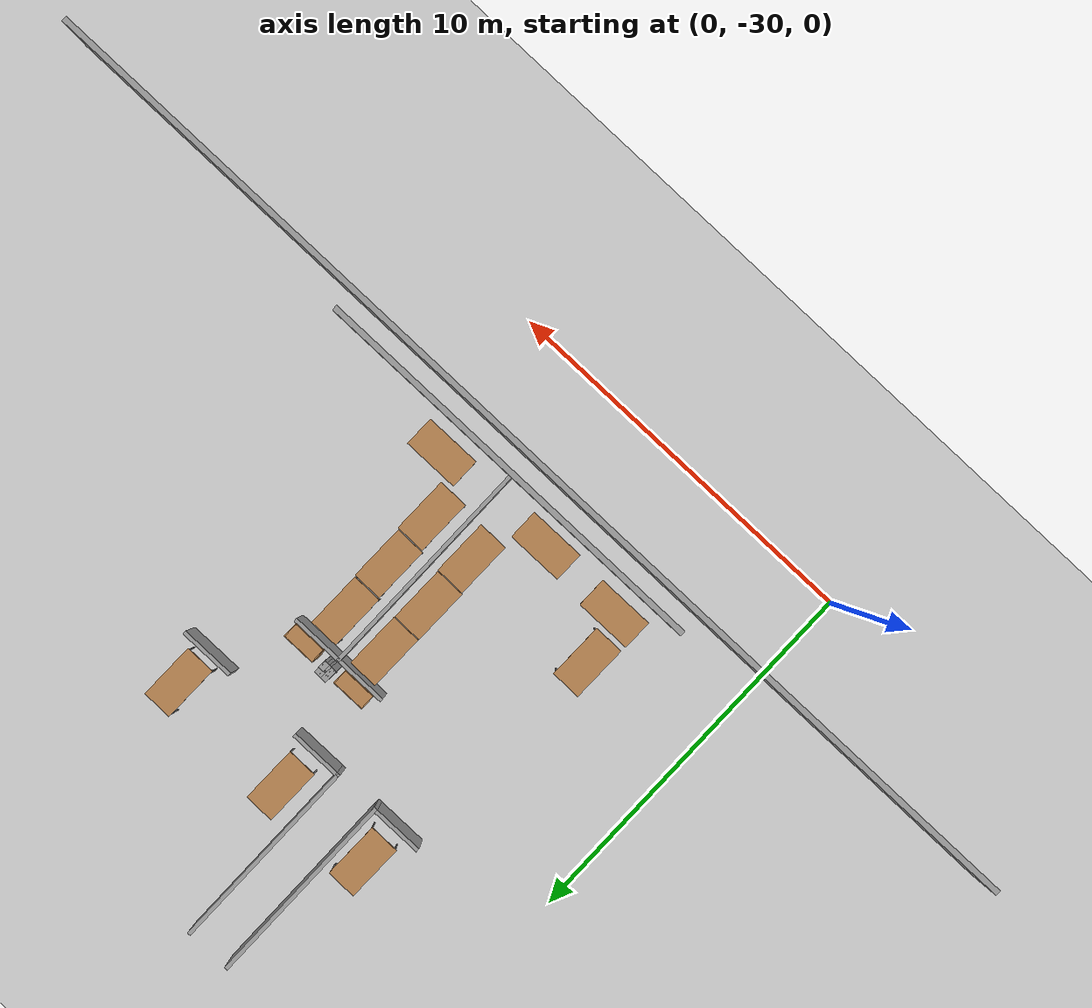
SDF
<sdf version="1.7">
 <world name="default">
  <model name="ground_plane">
   <static>1</static>
   <link name="link">
    <collision name="collision">
     <geometry><plane><normal>0 0 1</normal><size>100 100</size></plane></geometry>
     <surface>
      <contact><collide_bitmask>65535</collide_bitmask></contact>
      <friction><ode><mu>100</mu><mu2>50</mu2></ode></friction>
     </surface>
    </collision>
    <visual name="visual">
     <cast_shadows>0</cast_shadows>
     <geometry><plane><normal>0 0 1</normal><size>100 100</size></plane></geometry>
     <material>
      <script><uri>file://media/materials/scripts/gazebo.material</uri><name>Gazebo/Grey</name></script>
     </material>
    </visual>
   </link>
  </model>
  <model name="office_indoor_centered">
   <pose>8.45773 -9.64315 0 0 -0 0</pose>
   <link name="Wall_145">
    <collision name="Wall_145_Collision">
     <geometry><box><size>5.20019 0.1 1.3</size></box></geometry>
     <pose>0 0 0.65 0 -0 0</pose>
    </collision>
    <visual name="Wall_145_Visual">
     <pose>0 0 0.65 0 -0 0</pose>
     <geometry><box><size>5.20019 0.1 1.3</size></box></geometry>
     <material>
      <script><uri>file://media/materials/scripts/gazebo.material</uri><name>Gazebo/Grey</name></script>
      <ambient>1 1 1 1</ambient>
     </material>
     <meta><layer>0</layer></meta>
    </visual>
    <pose>-2.54973 -6.76685 0 0 -0 1.5708</pose>
   </link>
   <link name="Wall_15">
    <collision name="Wall_15_Collision">
     <geometry><box><size>11 0.15 2.5</size></box></geometry>
     <pose>0 0 1.25 0 -0 0</pose>
    </collision>
    <visual name="Wall_15_Visual">
     <pose>0 0 1.25 0 -0 0</pose>
     <geometry><box><size>11 0.15 2.5</size></box></geometry>
     <material>
      <script><uri>file://media/materials/scripts/gazebo.material</uri><name>Gazebo/Grey</name></script>
      <ambient>1 1 1 1</ambient>
     </material>
     <meta><layer>0</layer></meta>
    </visual>
    <pose>-0.6 -17.3501 0 0 -0 3.14159</pose>
   </link>
   <link name="Wall_153">
    <collision name="Wall_153_Collision">
     <geometry><box><size>1.4502 0.1 1.3</size></box></geometry>
     <pose>0 0 0.65 0 -0 0</pose>
    </collision>
    <visual name="Wall_153_Visual">
     <pose>0 0 0.65 0 -0 0</pose>
     <geometry><box><size>1.4502 0.1 1.3</size></box></geometry>
     <material>
      <script><uri>file://media/materials/scripts/gazebo.material</uri><name>Gazebo/Grey</name></script>
      <ambient>1 1 1 1</ambient>
     </material>
     <meta><layer>0</layer></meta>
    </visual>
    <pose>-1.87473 -9.31685 0 0 -0 0</pose>
   </link>
   <link name="Wall_155">
    <collision name="Wall_155_Collision">
     <geometry><box><size>1.467 0.1 1.3</size></box></geometry>
     <pose>0 0 0.65 0 -0 0</pose>
    </collision>
    <visual name="Wall_155_Visual">
     <pose>0 0 0.65 0 -0 0</pose>
     <geometry><box><size>1.467 0.1 1.3</size></box></geometry>
     <material>
      <script><uri>file://media/materials/scripts/gazebo.material</uri><name>Gazebo/Grey</name></script>
      <ambient>1 1 1 1</ambient>
     </material>
     <meta><layer>0</layer></meta>
    </visual>
    <pose>1.68377 -9.30985 0 0 -0 3.14159</pose>
   </link>
   <link name="Wall_166">
    <collision name="Wall_166_Collision">
     <geometry><box><size>5.20019 0.1 1.3</size></box></geometry>
     <pose>0 0 0.65 0 -0 0</pose>
    </collision>
    <visual name="Wall_166_Visual">
     <pose>0 0 0.65 0 -0 0</pose>
     <geometry><box><size>5.20019 0.1 1.3</size></box></geometry>
     <material>
      <script><uri>file://media/materials/scripts/gazebo.material</uri><name>Gazebo/Grey</name></script>
      <ambient>1 1 1 1</ambient>
     </material>
     <meta><layer>0</layer></meta>
    </visual>
    <pose>-3.75173 -6.76685 0 0 -0 1.5708</pose>
   </link>
   <link name="Wall_176">
    <collision name="Wall_176_Collision">
     <geometry><box><size>1.45018 0.1 1.3</size></box></geometry>
     <pose>0 0 0.65 0 -0 0</pose>
    </collision>
    <visual name="Wall_176_Visual">
     <pose>0 0 0.65 0 -0 0</pose>
     <geometry><box><size>1.45018 0.1 1.3</size></box></geometry>
     <material>
      <script><uri>file://media/materials/scripts/gazebo.material</uri><name>Gazebo/Grey</name></script>
      <ambient>1 1 1 1</ambient>
     </material>
     <meta><layer>0</layer></meta>
    </visual>
    <pose>-4.42673 -9.31685 0 0 -0 3.14159</pose>
   </link>
   <link name="Wall_178">
    <collision name="Wall_178_Collision">
     <geometry><box><size>6.11833 0.1 1.3</size></box></geometry>
     <pose>0 0 0.65 0 -0 0</pose>
    </collision>
    <visual name="Wall_178_Visual">
     <pose>0 0 0.65 0 -0 0</pose>
     <geometry><box><size>6.11833 0.1 1.3</size></box></geometry>
     <material>
      <script><uri>file://media/materials/scripts/gazebo.material</uri><name>Gazebo/Grey</name></script>
      <ambient>1 1 1 1</ambient>
     </material>
     <meta><layer>0</layer></meta>
    </visual>
    <pose>-0.698728 -14.3349 0 0 -0 1.5708</pose>
   </link>
   <link name="Wall_179">
    <collision name="Wall_179_Collision">
     <geometry><box><size>1.44999 0.1 1.3</size></box></geometry>
     <pose>0 0 0.65 0 -0 0</pose>
    </collision>
    <visual name="Wall_179_Visual">
     <pose>0 0 0.65 0 -0 0</pose>
     <geometry><box><size>1.44999 0.1 1.3</size></box></geometry>
     <material>
      <script><uri>file://media/materials/scripts/gazebo.material</uri><name>Gazebo/Grey</name></script>
      <ambient>1 1 1 1</ambient>
     </material>
     <meta><layer>0</layer></meta>
    </visual>
    <pose>-0.023727 -11.3259 0 0 -0 0</pose>
   </link>
   <link name="Wall_181">
    <collision name="Wall_181_Collision">
     <geometry><box><size>1.45001 0.1 1.3</size></box></geometry>
     <pose>0 0 0.65 0 -0 0</pose>
    </collision>
    <visual name="Wall_181_Visual">
     <pose>0 0 0.65 0 -0 0</pose>
     <geometry><box><size>1.45001 0.1 1.3</size></box></geometry>
     <material>
      <script><uri>file://media/materials/scripts/gazebo.material</uri><name>Gazebo/Grey</name></script>
      <ambient>1 1 1 1</ambient>
     </material>
     <meta><layer>0</layer></meta>
    </visual>
    <pose>-1.37373 -11.3259 0 0 -0 3.14159</pose>
   </link>
   <link name="Wall_22">
    <collision name="Wall_22_Collision">
     <geometry><box><size>29.5 0.15 2.5</size></box></geometry>
     <pose>0 0 1.25 0 -0 0</pose>
    </collision>
    <visual name="Wall_22_Visual">
     <pose>0 0 1.25 0 -0 0</pose>
     <geometry><box><size>29.5 0.15 2.5</size></box></geometry>
     <material>
      <script><uri>file://media/materials/scripts/gazebo.material</uri><name>Gazebo/Grey</name></script>
      <ambient>1 1 1 1</ambient>
     </material>
     <meta><layer>0</layer></meta>
    </visual>
    <pose>-0.75 -17.9501 0 0 -0 3.14159</pose>
   </link>
   <link name="Wall_82">
    <collision name="Wall_82_Collision">
     <geometry><box><size>0.355014 0.15 2.5</size></box></geometry>
     <pose>0 0 1.25 0 -0 0</pose>
    </collision>
    <visual name="Wall_82_Visual">
     <pose>0 0 1.25 0 -0 0</pose>
     <geometry><box><size>0.355014 0.15 2.5</size></box></geometry>
     <material>
      <script><uri>file://media/materials/scripts/gazebo.material</uri><name>Gazebo/Grey</name></script>
      <ambient>1 1 1 1</ambient>
     </material>
     <meta><layer>0</layer></meta>
    </visual>
    <pose>-0.782969 -11.0784 0 0 -0 1.55467</pose>
   </link>
   <link name="Wall_83">
    <collision name="Wall_83_Collision">
     <geometry><box><size>0.35832 0.15 2.5</size></box></geometry>
     <pose>0 0 1.25 0 -0 0</pose>
    </collision>
    <visual name="Wall_83_Visual">
     <pose>0 0 1.25 0 -0 0</pose>
     <geometry><box><size>0.35832 0.15 2.5</size></box></geometry>
     <material>
      <script><uri>file://media/materials/scripts/gazebo.material</uri><name>Gazebo/Grey</name></script>
      <ambient>1 1 1 1</ambient>
     </material>
     <meta><layer>0</layer></meta>
    </visual>
    <pose>-0.677169 -10.9743 0 0 -0 0.015872</pose>
   </link>
   <link name="Wall_84">
    <collision name="Wall_84_Collision">
     <geometry><box><size>0.354987 0.15 2.5</size></box></geometry>
     <pose>0 0 1.25 0 -0 0</pose>
    </collision>
    <visual name="Wall_84_Visual">
     <pose>0 0 1.25 0 -0 0</pose>
     <geometry><box><size>0.354987 0.15 2.5</size></box></geometry>
     <material>
      <script><uri>file://media/materials/scripts/gazebo.material</uri><name>Gazebo/Grey</name></script>
      <ambient>1 1 1 1</ambient>
     </material>
     <meta><layer>0</layer></meta>
    </visual>
    <pose>-0.573022 -11.0751 0 0 -0 -1.5708</pose>
   </link>
   <link name="Wall_85">
    <collision name="Wall_85_Collision">
     <geometry><box><size>0.32866 0.15 2.5</size></box></geometry>
     <pose>0 0 1.25 0 -0 0</pose>
    </collision>
    <visual name="Wall_85_Visual">
     <pose>0 0 1.25 0 -0 0</pose>
     <geometry><box><size>0.32866 0.15 2.5</size></box></geometry>
     <material>
      <script><uri>file://media/materials/scripts/gazebo.material</uri><name>Gazebo/Grey</name></script>
      <ambient>1 1 1 1</ambient>
     </material>
     <meta><layer>0</layer></meta>
    </visual>
    <pose>-0.662291 -11.1743 0 0 -0 3.10457</pose>
   </link>
   <static>1</static>
  </model>
  <model name="table_12">
   <static>1</static>
   <link name="link">
    <collision name="surface">
     <pose>0 0 1 0 -0 0</pose>
     <geometry><box><size>1.5 0.8 0.03</size></box></geometry>
     <surface><friction><ode><mu>0.6</mu><mu2>0.6</mu2></ode></friction></surface>
    </collision>
    <visual name="visual1">
     <pose>0 0 1 0 -0 0</pose>
     <geometry><box><size>1.5 0.8 0.03</size></box></geometry>
     <material>
      <script><uri>file://media/materials/scripts/gazebo.material</uri><name>Gazebo/Wood</name></script>
     </material>
    </visual>
    <collision name="collision_front_left_leg">
     <pose>0.68 0.38 0.5 0 -0 0</pose>
     <geometry><cylinder><radius>0.02</radius><length>1</length></cylinder></geometry>
    </collision>
    <visual name="visual_front_left_leg">
     <pose>0.68 0.38 0.5 0 -0 0</pose>
     <geometry><cylinder><radius>0.02</radius><length>1</length></cylinder></geometry>
     <material>
      <script><uri>file://media/materials/scripts/gazebo.material</uri><name>Gazebo/Grey</name></script>
     </material>
    </visual>
    <collision name="collision_front_right_leg">
     <pose>0.68 -0.38 0.5 0 -0 0</pose>
     <geometry><cylinder><radius>0.02</radius><length>1</length></cylinder></geometry>
    </collision>
    <visual name="visual_front_right_leg">
     <pose>0.68 -0.38 0.5 0 -0 0</pose>
     <geometry><cylinder><radius>0.02</radius><length>1</length></cylinder></geometry>
     <material>
      <script><uri>file://media/materials/scripts/gazebo.material</uri><name>Gazebo/Grey</name></script>
     </material>
    </visual>
    <collision name="collision_back_right_leg">
     <pose>-0.68 -0.38 0.5 0 -0 0</pose>
     <geometry><cylinder><radius>0.02</radius><length>1</length></cylinder></geometry>
    </collision>
    <visual name="visual_back_right_leg">
     <pose>-0.68 -0.38 0.5 0 -0 0</pose>
     <geometry><cylinder><radius>0.02</radius><length>1</length></cylinder></geometry>
     <material>
      <script><uri>file://media/materials/scripts/gazebo.material</uri><name>Gazebo/Grey</name></script>
     </material>
    </visual>
    <collision name="collision_back_left_leg">
     <pose>-0.68 0.38 0.5 0 -0 0</pose>
     <geometry><cylinder><radius>0.02</radius><length>1</length></cylinder></geometry>
    </collision>
    <visual name="visual_back_left_leg">
     <pose>-0.68 0.38 0.5 0 -0 0</pose>
     <geometry><cylinder><radius>0.02</radius><length>1</length></cylinder></geometry>
     <material>
      <script><uri>file://media/materials/scripts/gazebo.material</uri><name>Gazebo/Grey</name></script>
     </material>
    </visual>
   </link>
   <pose>3.71612 -26.2266 0 0 -0 0</pose>
  </model>
  <model name="table_13">
   <static>1</static>
   <link name="link">
    <collision name="surface">
     <pose>0 0 1 0 -0 0</pose>
     <geometry><box><size>1.5 0.8 0.03</size></box></geometry>
     <surface><friction><ode><mu>0.6</mu><mu2>0.6</mu2></ode></friction></surface>
    </collision>
    <visual name="visual1">
     <pose>0 0 1 0 -0 0</pose>
     <geometry><box><size>1.5 0.8 0.03</size></box></geometry>
     <material>
      <script><uri>file://media/materials/scripts/gazebo.material</uri><name>Gazebo/Wood</name></script>
     </material>
    </visual>
    <collision name="collision_front_left_leg">
     <pose>0.68 0.38 0.5 0 -0 0</pose>
     <geometry><cylinder><radius>0.02</radius><length>1</length></cylinder></geometry>
    </collision>
    <visual name="visual_front_left_leg">
     <pose>0.68 0.38 0.5 0 -0 0</pose>
     <geometry><cylinder><radius>0.02</radius><length>1</length></cylinder></geometry>
     <material>
      <script><uri>file://media/materials/scripts/gazebo.material</uri><name>Gazebo/Grey</name></script>
     </material>
    </visual>
    <collision name="collision_front_right_leg">
     <pose>0.68 -0.38 0.5 0 -0 0</pose>
     <geometry><cylinder><radius>0.02</radius><length>1</length></cylinder></geometry>
    </collision>
    <visual name="visual_front_right_leg">
     <pose>0.68 -0.38 0.5 0 -0 0</pose>
     <geometry><cylinder><radius>0.02</radius><length>1</length></cylinder></geometry>
     <material>
      <script><uri>file://media/materials/scripts/gazebo.material</uri><name>Gazebo/Grey</name></script>
     </material>
    </visual>
    <collision name="collision_back_right_leg">
     <pose>-0.68 -0.38 0.5 0 -0 0</pose>
     <geometry><cylinder><radius>0.02</radius><length>1</length></cylinder></geometry>
    </collision>
    <visual name="visual_back_right_leg">
     <pose>-0.68 -0.38 0.5 0 -0 0</pose>
     <geometry><cylinder><radius>0.02</radius><length>1</length></cylinder></geometry>
     <material>
      <script><uri>file://media/materials/scripts/gazebo.material</uri><name>Gazebo/Grey</name></script>
     </material>
    </visual>
    <collision name="collision_back_left_leg">
     <pose>-0.68 0.38 0.5 0 -0 0</pose>
     <geometry><cylinder><radius>0.02</radius><length>1</length></cylinder></geometry>
    </collision>
    <visual name="visual_back_left_leg">
     <pose>-0.68 0.38 0.5 0 -0 0</pose>
     <geometry><cylinder><radius>0.02</radius><length>1</length></cylinder></geometry>
     <material>
      <script><uri>file://media/materials/scripts/gazebo.material</uri><name>Gazebo/Grey</name></script>
     </material>
    </visual>
   </link>
   <pose>6.01356 -26.2944 0 0 -0 0</pose>
  </model>
  <model name="table_14">
   <static>1</static>
   <link name="link">
    <collision name="surface">
     <pose>0 0 1 0 -0 0</pose>
     <geometry><box><size>1.5 0.8 0.03</size></box></geometry>
     <surface><friction><ode><mu>0.6</mu><mu2>0.6</mu2></ode></friction></surface>
    </collision>
    <visual name="visual1">
     <pose>0 0 1 0 -0 0</pose>
     <geometry><box><size>1.5 0.8 0.03</size></box></geometry>
     <material>
      <script><uri>file://media/materials/scripts/gazebo.material</uri><name>Gazebo/Wood</name></script>
     </material>
    </visual>
    <collision name="collision_front_left_leg">
     <pose>0.68 0.38 0.5 0 -0 0</pose>
     <geometry><cylinder><radius>0.02</radius><length>1</length></cylinder></geometry>
    </collision>
    <visual name="visual_front_left_leg">
     <pose>0.68 0.38 0.5 0 -0 0</pose>
     <geometry><cylinder><radius>0.02</radius><length>1</length></cylinder></geometry>
     <material>
      <script><uri>file://media/materials/scripts/gazebo.material</uri><name>Gazebo/Grey</name></script>
     </material>
    </visual>
    <collision name="collision_front_right_leg">
     <pose>0.68 -0.38 0.5 0 -0 0</pose>
     <geometry><cylinder><radius>0.02</radius><length>1</length></cylinder></geometry>
    </collision>
    <visual name="visual_front_right_leg">
     <pose>0.68 -0.38 0.5 0 -0 0</pose>
     <geometry><cylinder><radius>0.02</radius><length>1</length></cylinder></geometry>
     <material>
      <script><uri>file://media/materials/scripts/gazebo.material</uri><name>Gazebo/Grey</name></script>
     </material>
    </visual>
    <collision name="collision_back_right_leg">
     <pose>-0.68 -0.38 0.5 0 -0 0</pose>
     <geometry><cylinder><radius>0.02</radius><length>1</length></cylinder></geometry>
    </collision>
    <visual name="visual_back_right_leg">
     <pose>-0.68 -0.38 0.5 0 -0 0</pose>
     <geometry><cylinder><radius>0.02</radius><length>1</length></cylinder></geometry>
     <material>
      <script><uri>file://media/materials/scripts/gazebo.material</uri><name>Gazebo/Grey</name></script>
     </material>
    </visual>
    <collision name="collision_back_left_leg">
     <pose>-0.68 0.38 0.5 0 -0 0</pose>
     <geometry><cylinder><radius>0.02</radius><length>1</length></cylinder></geometry>
    </collision>
    <visual name="visual_back_left_leg">
     <pose>-0.68 0.38 0.5 0 -0 0</pose>
     <geometry><cylinder><radius>0.02</radius><length>1</length></cylinder></geometry>
     <material>
      <script><uri>file://media/materials/scripts/gazebo.material</uri><name>Gazebo/Grey</name></script>
     </material>
    </visual>
   </link>
   <pose>9.3402 -26.2238 0 0 -0 0</pose>
  </model>
  <model name="table_26_clone_14">
   <static>1</static>
   <link name="link">
    <collision name="surface">
     <pose>0 0 1 0 -0 0</pose>
     <geometry><box><size>1.5 0.8 0.03</size></box></geometry>
     <surface><friction><ode><mu>0.6</mu><mu2>0.6</mu2></ode></friction></surface>
    </collision>
    <visual name="visual1">
     <pose>0 0 1 0 -0 0</pose>
     <geometry><box><size>1.5 0.8 0.03</size></box></geometry>
     <material>
      <script><uri>file://media/materials/scripts/gazebo.material</uri><name>Gazebo/Wood</name></script>
     </material>
    </visual>
    <collision name="collision_front_left_leg">
     <pose>0.68 0.38 0.5 0 -0 0</pose>
     <geometry><cylinder><radius>0.02</radius><length>1</length></cylinder></geometry>
    </collision>
    <visual name="visual_front_left_leg">
     <pose>0.68 0.38 0.5 0 -0 0</pose>
     <geometry><cylinder><radius>0.02</radius><length>1</length></cylinder></geometry>
     <material>
      <script><uri>file://media/materials/scripts/gazebo.material</uri><name>Gazebo/Grey</name></script>
     </material>
    </visual>
    <collision name="collision_front_right_leg">
     <pose>0.68 -0.38 0.5 0 -0 0</pose>
     <geometry><cylinder><radius>0.02</radius><length>1</length></cylinder></geometry>
    </collision>
    <visual name="visual_front_right_leg">
     <pose>0.68 -0.38 0.5 0 -0 0</pose>
     <geometry><cylinder><radius>0.02</radius><length>1</length></cylinder></geometry>
     <material>
      <script><uri>file://media/materials/scripts/gazebo.material</uri><name>Gazebo/Grey</name></script>
     </material>
    </visual>
    <collision name="collision_back_right_leg">
     <pose>-0.68 -0.38 0.5 0 -0 0</pose>
     <geometry><cylinder><radius>0.02</radius><length>1</length></cylinder></geometry>
    </collision>
    <visual name="visual_back_right_leg">
     <pose>-0.68 -0.38 0.5 0 -0 0</pose>
     <geometry><cylinder><radius>0.02</radius><length>1</length></cylinder></geometry>
     <material>
      <script><uri>file://media/materials/scripts/gazebo.material</uri><name>Gazebo/Grey</name></script>
     </material>
    </visual>
    <collision name="collision_back_left_leg">
     <pose>-0.68 0.38 0.5 0 -0 0</pose>
     <geometry><cylinder><radius>0.02</radius><length>1</length></cylinder></geometry>
    </collision>
    <visual name="visual_back_left_leg">
     <pose>-0.68 0.38 0.5 0 -0 0</pose>
     <geometry><cylinder><radius>0.02</radius><length>1</length></cylinder></geometry>
     <material>
      <script><uri>file://media/materials/scripts/gazebo.material</uri><name>Gazebo/Grey</name></script>
     </material>
    </visual>
   </link>
   <pose>10.1779 -17.9415 0 0 0 -1.57974</pose>
  </model>
  <model name="table_26_clone_17">
   <static>1</static>
   <link name="link">
    <collision name="surface">
     <pose>0 0 1 0 -0 0</pose>
     <geometry><box><size>1.5 0.8 0.03</size></box></geometry>
     <surface><friction><ode><mu>0.6</mu><mu2>0.6</mu2></ode></friction></surface>
    </collision>
    <visual name="visual1">
     <pose>0 0 1 0 -0 0</pose>
     <geometry><box><size>1.5 0.8 0.03</size></box></geometry>
     <material>
      <script><uri>file://media/materials/scripts/gazebo.material</uri><name>Gazebo/Wood</name></script>
     </material>
    </visual>
    <collision name="collision_front_left_leg">
     <pose>0.68 0.38 0.5 0 -0 0</pose>
     <geometry><cylinder><radius>0.02</radius><length>1</length></cylinder></geometry>
    </collision>
    <visual name="visual_front_left_leg">
     <pose>0.68 0.38 0.5 0 -0 0</pose>
     <geometry><cylinder><radius>0.02</radius><length>1</length></cylinder></geometry>
     <material>
      <script><uri>file://media/materials/scripts/gazebo.material</uri><name>Gazebo/Grey</name></script>
     </material>
    </visual>
    <collision name="collision_front_right_leg">
     <pose>0.68 -0.38 0.5 0 -0 0</pose>
     <geometry><cylinder><radius>0.02</radius><length>1</length></cylinder></geometry>
    </collision>
    <visual name="visual_front_right_leg">
     <pose>0.68 -0.38 0.5 0 -0 0</pose>
     <geometry><cylinder><radius>0.02</radius><length>1</length></cylinder></geometry>
     <material>
      <script><uri>file://media/materials/scripts/gazebo.material</uri><name>Gazebo/Grey</name></script>
     </material>
    </visual>
    <collision name="collision_back_right_leg">
     <pose>-0.68 -0.38 0.5 0 -0 0</pose>
     <geometry><cylinder><radius>0.02</radius><length>1</length></cylinder></geometry>
    </collision>
    <visual name="visual_back_right_leg">
     <pose>-0.68 -0.38 0.5 0 -0 0</pose>
     <geometry><cylinder><radius>0.02</radius><length>1</length></cylinder></geometry>
     <material>
      <script><uri>file://media/materials/scripts/gazebo.material</uri><name>Gazebo/Grey</name></script>
     </material>
    </visual>
    <collision name="collision_back_left_leg">
     <pose>-0.68 0.38 0.5 0 -0 0</pose>
     <geometry><cylinder><radius>0.02</radius><length>1</length></cylinder></geometry>
    </collision>
    <visual name="visual_back_left_leg">
     <pose>-0.68 0.38 0.5 0 -0 0</pose>
     <geometry><cylinder><radius>0.02</radius><length>1</length></cylinder></geometry>
     <material>
      <script><uri>file://media/materials/scripts/gazebo.material</uri><name>Gazebo/Grey</name></script>
     </material>
    </visual>
   </link>
   <pose>6.71927 -17.8047 0 0 0 -1.57974</pose>
  </model>
  <model name="table_26_clone_18">
   <static>1</static>
   <link name="link">
    <collision name="surface">
     <pose>0 0 1 0 -0 0</pose>
     <geometry><box><size>1.5 0.8 0.03</size></box></geometry>
     <surface><friction><ode><mu>0.6</mu><mu2>0.6</mu2></ode></friction></surface>
    </collision>
    <visual name="visual1">
     <pose>0 0 1 0 -0 0</pose>
     <geometry><box><size>1.5 0.8 0.03</size></box></geometry>
     <material>
      <script><uri>file://media/materials/scripts/gazebo.material</uri><name>Gazebo/Wood</name></script>
     </material>
    </visual>
    <collision name="collision_front_left_leg">
     <pose>0.68 0.38 0.5 0 -0 0</pose>
     <geometry><cylinder><radius>0.02</radius><length>1</length></cylinder></geometry>
    </collision>
    <visual name="visual_front_left_leg">
     <pose>0.68 0.38 0.5 0 -0 0</pose>
     <geometry><cylinder><radius>0.02</radius><length>1</length></cylinder></geometry>
     <material>
      <script><uri>file://media/materials/scripts/gazebo.material</uri><name>Gazebo/Grey</name></script>
     </material>
    </visual>
    <collision name="collision_front_right_leg">
     <pose>0.68 -0.38 0.5 0 -0 0</pose>
     <geometry><cylinder><radius>0.02</radius><length>1</length></cylinder></geometry>
    </collision>
    <visual name="visual_front_right_leg">
     <pose>0.68 -0.38 0.5 0 -0 0</pose>
     <geometry><cylinder><radius>0.02</radius><length>1</length></cylinder></geometry>
     <material>
      <script><uri>file://media/materials/scripts/gazebo.material</uri><name>Gazebo/Grey</name></script>
     </material>
    </visual>
    <collision name="collision_back_right_leg">
     <pose>-0.68 -0.38 0.5 0 -0 0</pose>
     <geometry><cylinder><radius>0.02</radius><length>1</length></cylinder></geometry>
    </collision>
    <visual name="visual_back_right_leg">
     <pose>-0.68 -0.38 0.5 0 -0 0</pose>
     <geometry><cylinder><radius>0.02</radius><length>1</length></cylinder></geometry>
     <material>
      <script><uri>file://media/materials/scripts/gazebo.material</uri><name>Gazebo/Grey</name></script>
     </material>
    </visual>
    <collision name="collision_back_left_leg">
     <pose>-0.68 0.38 0.5 0 -0 0</pose>
     <geometry><cylinder><radius>0.02</radius><length>1</length></cylinder></geometry>
    </collision>
    <visual name="visual_back_left_leg">
     <pose>-0.68 0.38 0.5 0 -0 0</pose>
     <geometry><cylinder><radius>0.02</radius><length>1</length></cylinder></geometry>
     <material>
      <script><uri>file://media/materials/scripts/gazebo.material</uri><name>Gazebo/Grey</name></script>
     </material>
    </visual>
   </link>
   <pose>4.05406 -17.8198 0 0 0 -1.57974</pose>
  </model>
  <model name="table_26_clone_26">
   <static>1</static>
   <link name="link">
    <collision name="surface">
     <pose>0 0 1 0 -0 0</pose>
     <geometry><box><size>1.5 0.8 0.03</size></box></geometry>
     <surface><friction><ode><mu>0.6</mu><mu2>0.6</mu2></ode></friction></surface>
    </collision>
    <visual name="visual1">
     <pose>0 0 1 0 -0 0</pose>
     <geometry><box><size>1.5 0.8 0.03</size></box></geometry>
     <material>
      <script><uri>file://media/materials/scripts/gazebo.material</uri><name>Gazebo/Wood</name></script>
     </material>
    </visual>
    <collision name="collision_front_left_leg">
     <pose>0.68 0.38 0.5 0 -0 0</pose>
     <geometry><cylinder><radius>0.02</radius><length>1</length></cylinder></geometry>
    </collision>
    <visual name="visual_front_left_leg">
     <pose>0.68 0.38 0.5 0 -0 0</pose>
     <geometry><cylinder><radius>0.02</radius><length>1</length></cylinder></geometry>
     <material>
      <script><uri>file://media/materials/scripts/gazebo.material</uri><name>Gazebo/Grey</name></script>
     </material>
    </visual>
    <collision name="collision_front_right_leg">
     <pose>0.68 -0.38 0.5 0 -0 0</pose>
     <geometry><cylinder><radius>0.02</radius><length>1</length></cylinder></geometry>
    </collision>
    <visual name="visual_front_right_leg">
     <pose>0.68 -0.38 0.5 0 -0 0</pose>
     <geometry><cylinder><radius>0.02</radius><length>1</length></cylinder></geometry>
     <material>
      <script><uri>file://media/materials/scripts/gazebo.material</uri><name>Gazebo/Grey</name></script>
     </material>
    </visual>
    <collision name="collision_back_right_leg">
     <pose>-0.68 -0.38 0.5 0 -0 0</pose>
     <geometry><cylinder><radius>0.02</radius><length>1</length></cylinder></geometry>
    </collision>
    <visual name="visual_back_right_leg">
     <pose>-0.68 -0.38 0.5 0 -0 0</pose>
     <geometry><cylinder><radius>0.02</radius><length>1</length></cylinder></geometry>
     <material>
      <script><uri>file://media/materials/scripts/gazebo.material</uri><name>Gazebo/Grey</name></script>
     </material>
    </visual>
    <collision name="collision_back_left_leg">
     <pose>-0.68 0.38 0.5 0 -0 0</pose>
     <geometry><cylinder><radius>0.02</radius><length>1</length></cylinder></geometry>
    </collision>
    <visual name="visual_back_left_leg">
     <pose>-0.68 0.38 0.5 0 -0 0</pose>
     <geometry><cylinder><radius>0.02</radius><length>1</length></cylinder></geometry>
     <material>
      <script><uri>file://media/materials/scripts/gazebo.material</uri><name>Gazebo/Grey</name></script>
     </material>
    </visual>
   </link>
   <pose>3.39464 -24.9426 0 0 0 -1.57974</pose>
  </model>
  <model name="table_26_clone_29">
   <static>1</static>
   <link name="link">
    <collision name="surface">
     <pose>0 0 1 0 -0 0</pose>
     <geometry><box><size>1.5 0.8 0.03</size></box></geometry>
     <surface><friction><ode><mu>0.6</mu><mu2>0.6</mu2></ode></friction></surface>
    </collision>
    <visual name="visual1">
     <pose>0 0 1 0 -0 0</pose>
     <geometry><box><size>1.5 0.8 0.03</size></box></geometry>
     <material>
      <script><uri>file://media/materials/scripts/gazebo.material</uri><name>Gazebo/Wood</name></script>
     </material>
    </visual>
    <collision name="collision_front_left_leg">
     <pose>0.68 0.38 0.5 0 -0 0</pose>
     <geometry><cylinder><radius>0.02</radius><length>1</length></cylinder></geometry>
    </collision>
    <visual name="visual_front_left_leg">
     <pose>0.68 0.38 0.5 0 -0 0</pose>
     <geometry><cylinder><radius>0.02</radius><length>1</length></cylinder></geometry>
     <material>
      <script><uri>file://media/materials/scripts/gazebo.material</uri><name>Gazebo/Grey</name></script>
     </material>
    </visual>
    <collision name="collision_front_right_leg">
     <pose>0.68 -0.38 0.5 0 -0 0</pose>
     <geometry><cylinder><radius>0.02</radius><length>1</length></cylinder></geometry>
    </collision>
    <visual name="visual_front_right_leg">
     <pose>0.68 -0.38 0.5 0 -0 0</pose>
     <geometry><cylinder><radius>0.02</radius><length>1</length></cylinder></geometry>
     <material>
      <script><uri>file://media/materials/scripts/gazebo.material</uri><name>Gazebo/Grey</name></script>
     </material>
    </visual>
    <collision name="collision_back_right_leg">
     <pose>-0.68 -0.38 0.5 0 -0 0</pose>
     <geometry><cylinder><radius>0.02</radius><length>1</length></cylinder></geometry>
    </collision>
    <visual name="visual_back_right_leg">
     <pose>-0.68 -0.38 0.5 0 -0 0</pose>
     <geometry><cylinder><radius>0.02</radius><length>1</length></cylinder></geometry>
     <material>
      <script><uri>file://media/materials/scripts/gazebo.material</uri><name>Gazebo/Grey</name></script>
     </material>
    </visual>
    <collision name="collision_back_left_leg">
     <pose>-0.68 0.38 0.5 0 -0 0</pose>
     <geometry><cylinder><radius>0.02</radius><length>1</length></cylinder></geometry>
    </collision>
    <visual name="visual_back_left_leg">
     <pose>-0.68 0.38 0.5 0 -0 0</pose>
     <geometry><cylinder><radius>0.02</radius><length>1</length></cylinder></geometry>
     <material>
      <script><uri>file://media/materials/scripts/gazebo.material</uri><name>Gazebo/Grey</name></script>
     </material>
    </visual>
   </link>
   <pose>7.10308 -21.8312 0 0 0 -1.57974</pose>
  </model>
  <model name="table_26_clone_30">
   <static>1</static>
   <link name="link">
    <collision name="surface">
     <pose>0 0 1 0 -0 0</pose>
     <geometry><box><size>1.5 0.8 0.03</size></box></geometry>
     <surface><friction><ode><mu>0.6</mu><mu2>0.6</mu2></ode></friction></surface>
    </collision>
    <visual name="visual1">
     <pose>0 0 1 0 -0 0</pose>
     <geometry><box><size>1.5 0.8 0.03</size></box></geometry>
     <material>
      <script><uri>file://media/materials/scripts/gazebo.material</uri><name>Gazebo/Wood</name></script>
     </material>
    </visual>
    <collision name="collision_front_left_leg">
     <pose>0.68 0.38 0.5 0 -0 0</pose>
     <geometry><cylinder><radius>0.02</radius><length>1</length></cylinder></geometry>
    </collision>
    <visual name="visual_front_left_leg">
     <pose>0.68 0.38 0.5 0 -0 0</pose>
     <geometry><cylinder><radius>0.02</radius><length>1</length></cylinder></geometry>
     <material>
      <script><uri>file://media/materials/scripts/gazebo.material</uri><name>Gazebo/Grey</name></script>
     </material>
    </visual>
    <collision name="collision_front_right_leg">
     <pose>0.68 -0.38 0.5 0 -0 0</pose>
     <geometry><cylinder><radius>0.02</radius><length>1</length></cylinder></geometry>
    </collision>
    <visual name="visual_front_right_leg">
     <pose>0.68 -0.38 0.5 0 -0 0</pose>
     <geometry><cylinder><radius>0.02</radius><length>1</length></cylinder></geometry>
     <material>
      <script><uri>file://media/materials/scripts/gazebo.material</uri><name>Gazebo/Grey</name></script>
     </material>
    </visual>
    <collision name="collision_back_right_leg">
     <pose>-0.68 -0.38 0.5 0 -0 0</pose>
     <geometry><cylinder><radius>0.02</radius><length>1</length></cylinder></geometry>
    </collision>
    <visual name="visual_back_right_leg">
     <pose>-0.68 -0.38 0.5 0 -0 0</pose>
     <geometry><cylinder><radius>0.02</radius><length>1</length></cylinder></geometry>
     <material>
      <script><uri>file://media/materials/scripts/gazebo.material</uri><name>Gazebo/Grey</name></script>
     </material>
    </visual>
    <collision name="collision_back_left_leg">
     <pose>-0.68 0.38 0.5 0 -0 0</pose>
     <geometry><cylinder><radius>0.02</radius><length>1</length></cylinder></geometry>
    </collision>
    <visual name="visual_back_left_leg">
     <pose>-0.68 0.38 0.5 0 -0 0</pose>
     <geometry><cylinder><radius>0.02</radius><length>1</length></cylinder></geometry>
     <material>
      <script><uri>file://media/materials/scripts/gazebo.material</uri><name>Gazebo/Grey</name></script>
     </material>
    </visual>
   </link>
   <pose>7.08354 -23.3452 0 0 0 -1.57974</pose>
  </model>
  <model name="table_26_clone_31">
   <static>1</static>
   <link name="link">
    <collision name="surface">
     <pose>0 0 1 0 -0 0</pose>
     <geometry><box><size>1.5 0.8 0.03</size></box></geometry>
     <surface><friction><ode><mu>0.6</mu><mu2>0.6</mu2></ode></friction></surface>
    </collision>
    <visual name="visual1">
     <pose>0 0 1 0 -0 0</pose>
     <geometry><box><size>1.5 0.8 0.03</size></box></geometry>
     <material>
      <script><uri>file://media/materials/scripts/gazebo.material</uri><name>Gazebo/Wood</name></script>
     </material>
    </visual>
    <collision name="collision_front_left_leg">
     <pose>0.68 0.38 0.5 0 -0 0</pose>
     <geometry><cylinder><radius>0.02</radius><length>1</length></cylinder></geometry>
    </collision>
    <visual name="visual_front_left_leg">
     <pose>0.68 0.38 0.5 0 -0 0</pose>
     <geometry><cylinder><radius>0.02</radius><length>1</length></cylinder></geometry>
     <material>
      <script><uri>file://media/materials/scripts/gazebo.material</uri><name>Gazebo/Grey</name></script>
     </material>
    </visual>
    <collision name="collision_front_right_leg">
     <pose>0.68 -0.38 0.5 0 -0 0</pose>
     <geometry><cylinder><radius>0.02</radius><length>1</length></cylinder></geometry>
    </collision>
    <visual name="visual_front_right_leg">
     <pose>0.68 -0.38 0.5 0 -0 0</pose>
     <geometry><cylinder><radius>0.02</radius><length>1</length></cylinder></geometry>
     <material>
      <script><uri>file://media/materials/scripts/gazebo.material</uri><name>Gazebo/Grey</name></script>
     </material>
    </visual>
    <collision name="collision_back_right_leg">
     <pose>-0.68 -0.38 0.5 0 -0 0</pose>
     <geometry><cylinder><radius>0.02</radius><length>1</length></cylinder></geometry>
    </collision>
    <visual name="visual_back_right_leg">
     <pose>-0.68 -0.38 0.5 0 -0 0</pose>
     <geometry><cylinder><radius>0.02</radius><length>1</length></cylinder></geometry>
     <material>
      <script><uri>file://media/materials/scripts/gazebo.material</uri><name>Gazebo/Grey</name></script>
     </material>
    </visual>
    <collision name="collision_back_left_leg">
     <pose>-0.68 0.38 0.5 0 -0 0</pose>
     <geometry><cylinder><radius>0.02</radius><length>1</length></cylinder></geometry>
    </collision>
    <visual name="visual_back_left_leg">
     <pose>-0.68 0.38 0.5 0 -0 0</pose>
     <geometry><cylinder><radius>0.02</radius><length>1</length></cylinder></geometry>
     <material>
      <script><uri>file://media/materials/scripts/gazebo.material</uri><name>Gazebo/Grey</name></script>
     </material>
    </visual>
   </link>
   <pose>7.09378 -24.8597 0 0 0 -1.57974</pose>
  </model>
  <model name="table_26_clone_34">
   <static>1</static>
   <link name="link">
    <collision name="surface">
     <pose>0 0 1 0 -0 0</pose>
     <geometry><box><size>1.5 0.8 0.03</size></box></geometry>
     <surface><friction><ode><mu>0.6</mu><mu2>0.6</mu2></ode></friction></surface>
    </collision>
    <visual name="visual1">
     <pose>0 0 1 0 -0 0</pose>
     <geometry><box><size>1.5 0.8 0.03</size></box></geometry>
     <material>
      <script><uri>file://media/materials/scripts/gazebo.material</uri><name>Gazebo/Wood</name></script>
     </material>
    </visual>
    <collision name="collision_front_left_leg">
     <pose>0.68 0.38 0.5 0 -0 0</pose>
     <geometry><cylinder><radius>0.02</radius><length>1</length></cylinder></geometry>
    </collision>
    <visual name="visual_front_left_leg">
     <pose>0.68 0.38 0.5 0 -0 0</pose>
     <geometry><cylinder><radius>0.02</radius><length>1</length></cylinder></geometry>
     <material>
      <script><uri>file://media/materials/scripts/gazebo.material</uri><name>Gazebo/Grey</name></script>
     </material>
    </visual>
    <collision name="collision_front_right_leg">
     <pose>0.68 -0.38 0.5 0 -0 0</pose>
     <geometry><cylinder><radius>0.02</radius><length>1</length></cylinder></geometry>
    </collision>
    <visual name="visual_front_right_leg">
     <pose>0.68 -0.38 0.5 0 -0 0</pose>
     <geometry><cylinder><radius>0.02</radius><length>1</length></cylinder></geometry>
     <material>
      <script><uri>file://media/materials/scripts/gazebo.material</uri><name>Gazebo/Grey</name></script>
     </material>
    </visual>
    <collision name="collision_back_right_leg">
     <pose>-0.68 -0.38 0.5 0 -0 0</pose>
     <geometry><cylinder><radius>0.02</radius><length>1</length></cylinder></geometry>
    </collision>
    <visual name="visual_back_right_leg">
     <pose>-0.68 -0.38 0.5 0 -0 0</pose>
     <geometry><cylinder><radius>0.02</radius><length>1</length></cylinder></geometry>
     <material>
      <script><uri>file://media/materials/scripts/gazebo.material</uri><name>Gazebo/Grey</name></script>
     </material>
    </visual>
    <collision name="collision_back_left_leg">
     <pose>-0.68 0.38 0.5 0 -0 0</pose>
     <geometry><cylinder><radius>0.02</radius><length>1</length></cylinder></geometry>
    </collision>
    <visual name="visual_back_left_leg">
     <pose>-0.68 0.38 0.5 0 -0 0</pose>
     <geometry><cylinder><radius>0.02</radius><length>1</length></cylinder></geometry>
     <material>
      <script><uri>file://media/materials/scripts/gazebo.material</uri><name>Gazebo/Grey</name></script>
     </material>
    </visual>
   </link>
   <pose>8.438 -21.898 0 0 0 -1.57974</pose>
  </model>
  <model name="table_26_clone_35">
   <static>1</static>
   <link name="link">
    <collision name="surface">
     <pose>0 0 1 0 -0 0</pose>
     <geometry><box><size>1.5 0.8 0.03</size></box></geometry>
     <surface><friction><ode><mu>0.6</mu><mu2>0.6</mu2></ode></friction></surface>
    </collision>
    <visual name="visual1">
     <pose>0 0 1 0 -0 0</pose>
     <geometry><box><size>1.5 0.8 0.03</size></box></geometry>
     <material>
      <script><uri>file://media/materials/scripts/gazebo.material</uri><name>Gazebo/Wood</name></script>
     </material>
    </visual>
    <collision name="collision_front_left_leg">
     <pose>0.68 0.38 0.5 0 -0 0</pose>
     <geometry><cylinder><radius>0.02</radius><length>1</length></cylinder></geometry>
    </collision>
    <visual name="visual_front_left_leg">
     <pose>0.68 0.38 0.5 0 -0 0</pose>
     <geometry><cylinder><radius>0.02</radius><length>1</length></cylinder></geometry>
     <material>
      <script><uri>file://media/materials/scripts/gazebo.material</uri><name>Gazebo/Grey</name></script>
     </material>
    </visual>
    <collision name="collision_front_right_leg">
     <pose>0.68 -0.38 0.5 0 -0 0</pose>
     <geometry><cylinder><radius>0.02</radius><length>1</length></cylinder></geometry>
    </collision>
    <visual name="visual_front_right_leg">
     <pose>0.68 -0.38 0.5 0 -0 0</pose>
     <geometry><cylinder><radius>0.02</radius><length>1</length></cylinder></geometry>
     <material>
      <script><uri>file://media/materials/scripts/gazebo.material</uri><name>Gazebo/Grey</name></script>
     </material>
    </visual>
    <collision name="collision_back_right_leg">
     <pose>-0.68 -0.38 0.5 0 -0 0</pose>
     <geometry><cylinder><radius>0.02</radius><length>1</length></cylinder></geometry>
    </collision>
    <visual name="visual_back_right_leg">
     <pose>-0.68 -0.38 0.5 0 -0 0</pose>
     <geometry><cylinder><radius>0.02</radius><length>1</length></cylinder></geometry>
     <material>
      <script><uri>file://media/materials/scripts/gazebo.material</uri><name>Gazebo/Grey</name></script>
     </material>
    </visual>
    <collision name="collision_back_left_leg">
     <pose>-0.68 0.38 0.5 0 -0 0</pose>
     <geometry><cylinder><radius>0.02</radius><length>1</length></cylinder></geometry>
    </collision>
    <visual name="visual_back_left_leg">
     <pose>-0.68 0.38 0.5 0 -0 0</pose>
     <geometry><cylinder><radius>0.02</radius><length>1</length></cylinder></geometry>
     <material>
      <script><uri>file://media/materials/scripts/gazebo.material</uri><name>Gazebo/Grey</name></script>
     </material>
    </visual>
   </link>
   <pose>8.45102 -23.4235 0 0 0 -1.57974</pose>
  </model>
  <model name="table_26_clone_36">
   <static>1</static>
   <link name="link">
    <collision name="surface">
     <pose>0 0 1 0 -0 0</pose>
     <geometry><box><size>1.5 0.8 0.03</size></box></geometry>
     <surface><friction><ode><mu>0.6</mu><mu2>0.6</mu2></ode></friction></surface>
    </collision>
    <visual name="visual1">
     <pose>0 0 1 0 -0 0</pose>
     <geometry><box><size>1.5 0.8 0.03</size></box></geometry>
     <material>
      <script><uri>file://media/materials/scripts/gazebo.material</uri><name>Gazebo/Wood</name></script>
     </material>
    </visual>
    <collision name="collision_front_left_leg">
     <pose>0.68 0.38 0.5 0 -0 0</pose>
     <geometry><cylinder><radius>0.02</radius><length>1</length></cylinder></geometry>
    </collision>
    <visual name="visual_front_left_leg">
     <pose>0.68 0.38 0.5 0 -0 0</pose>
     <geometry><cylinder><radius>0.02</radius><length>1</length></cylinder></geometry>
     <material>
      <script><uri>file://media/materials/scripts/gazebo.material</uri><name>Gazebo/Grey</name></script>
     </material>
    </visual>
    <collision name="collision_front_right_leg">
     <pose>0.68 -0.38 0.5 0 -0 0</pose>
     <geometry><cylinder><radius>0.02</radius><length>1</length></cylinder></geometry>
    </collision>
    <visual name="visual_front_right_leg">
     <pose>0.68 -0.38 0.5 0 -0 0</pose>
     <geometry><cylinder><radius>0.02</radius><length>1</length></cylinder></geometry>
     <material>
      <script><uri>file://media/materials/scripts/gazebo.material</uri><name>Gazebo/Grey</name></script>
     </material>
    </visual>
    <collision name="collision_back_right_leg">
     <pose>-0.68 -0.38 0.5 0 -0 0</pose>
     <geometry><cylinder><radius>0.02</radius><length>1</length></cylinder></geometry>
    </collision>
    <visual name="visual_back_right_leg">
     <pose>-0.68 -0.38 0.5 0 -0 0</pose>
     <geometry><cylinder><radius>0.02</radius><length>1</length></cylinder></geometry>
     <material>
      <script><uri>file://media/materials/scripts/gazebo.material</uri><name>Gazebo/Grey</name></script>
     </material>
    </visual>
    <collision name="collision_back_left_leg">
     <pose>-0.68 0.38 0.5 0 -0 0</pose>
     <geometry><cylinder><radius>0.02</radius><length>1</length></cylinder></geometry>
    </collision>
    <visual name="visual_back_left_leg">
     <pose>-0.68 0.38 0.5 0 -0 0</pose>
     <geometry><cylinder><radius>0.02</radius><length>1</length></cylinder></geometry>
     <material>
      <script><uri>file://media/materials/scripts/gazebo.material</uri><name>Gazebo/Grey</name></script>
     </material>
    </visual>
   </link>
   <pose>8.47763 -24.9481 0 0 0 -1.57974</pose>
  </model>
  <model name="bookshelf">
   <static>1</static>
   <link name="link">
    <inertial><mass>1</mass></inertial>
    <collision name="collision_back">
     <pose>0 0.005 0.6 0 -0 0</pose>
     <geometry><box><size>0.9 0.01 1.2</size></box></geometry>
    </collision>
    <visual name="visual1">
     <pose>0 0.005 0.6 0 -0 0</pose>
     <geometry><box><size>0.9 0.01 1.2</size></box></geometry>
     <material>
      <script><uri>file://media/materials/scripts/gazebo.material</uri><name>Gazebo/Wood</name></script>
     </material>
    </visual>
    <collision name="left_side">
     <pose>0.45 -0.195 0.6 0 -0 0</pose>
     <geometry><box><size>0.02 0.4 1.2</size></box></geometry>
    </collision>
    <visual name="visual2">
     <pose>0.45 -0.195 0.6 0 -0 0</pose>
     <geometry><box><size>0.02 0.4 1.2</size></box></geometry>
     <material>
      <script><uri>file://media/materials/scripts/gazebo.material</uri><name>Gazebo/Wood</name></script>
     </material>
    </visual>
    <collision name="right_side">
     <pose>-0.45 -0.195 0.6 0 -0 0</pose>
     <geometry><box><size>0.02 0.4 1.2</size></box></geometry>
    </collision>
    <visual name="visual3">
     <pose>-0.45 -0.195 0.6 0 -0 0</pose>
     <geometry><box><size>0.02 0.4 1.2</size></box></geometry>
     <material>
      <script><uri>file://media/materials/scripts/gazebo.material</uri><name>Gazebo/Wood</name></script>
     </material>
    </visual>
    <collision name="bottom">
     <pose>0 -0.195 0.03 0 -0 0</pose>
     <geometry><box><size>0.88 0.4 0.06</size></box></geometry>
    </collision>
    <visual name="visual4">
     <pose>0 -0.195 0.03 0 -0 0</pose>
     <geometry><box><size>0.88 0.4 0.06</size></box></geometry>
     <material>
      <script><uri>file://media/materials/scripts/gazebo.material</uri><name>Gazebo/Wood</name></script>
     </material>
    </visual>
    <collision name="top">
     <pose>0 -0.195 1.19 0 -0 0</pose>
     <geometry><box><size>0.88 0.4 0.02</size></box></geometry>
    </collision>
    <visual name="visual5">
     <pose>0 -0.195 1.19 0 -0 0</pose>
     <geometry><box><size>0.88 0.4 0.02</size></box></geometry>
     <material>
      <script><uri>file://media/materials/scripts/gazebo.material</uri><name>Gazebo/Wood</name></script>
     </material>
    </visual>
    <collision name="low_shelf">
     <pose>0 -0.195 0.43 0 -0 0</pose>
     <geometry><box><size>0.88 0.4 0.02</size></box></geometry>
    </collision>
    <visual name="visual6">
     <pose>0 -0.195 0.43 0 -0 0</pose>
     <geometry><box><size>0.88 0.4 0.02</size></box></geometry>
     <material>
      <script><uri>file://media/materials/scripts/gazebo.material</uri><name>Gazebo/Wood</name></script>
     </material>
    </visual>
    <collision name="high_shelf">
     <pose>0 -0.195 0.8 0 -0 0</pose>
     <geometry><box><size>0.88 0.4 0.02</size></box></geometry>
    </collision>
    <visual name="visual7">
     <pose>0 -0.195 0.8 0 -0 0</pose>
     <geometry><box><size>0.88 0.4 0.02</size></box></geometry>
     <material>
      <script><uri>file://media/materials/scripts/gazebo.material</uri><name>Gazebo/Wood</name></script>
     </material>
    </visual>
   </link>
   <pose>7.01677 -20.4911 0 0 -0 0</pose>
  </model>
  <model name="bookshelf_0">
   <static>1</static>
   <link name="link">
    <inertial><mass>1</mass></inertial>
    <collision name="collision_back">
     <pose>0 0.005 0.6 0 -0 0</pose>
     <geometry><box><size>0.9 0.01 1.2</size></box></geometry>
    </collision>
    <visual name="visual1">
     <pose>0 0.005 0.6 0 -0 0</pose>
     <geometry><box><size>0.9 0.01 1.2</size></box></geometry>
     <material>
      <script><uri>file://media/materials/scripts/gazebo.material</uri><name>Gazebo/Wood</name></script>
     </material>
    </visual>
    <collision name="left_side">
     <pose>0.45 -0.195 0.6 0 -0 0</pose>
     <geometry><box><size>0.02 0.4 1.2</size></box></geometry>
    </collision>
    <visual name="visual2">
     <pose>0.45 -0.195 0.6 0 -0 0</pose>
     <geometry><box><size>0.02 0.4 1.2</size></box></geometry>
     <material>
      <script><uri>file://media/materials/scripts/gazebo.material</uri><name>Gazebo/Wood</name></script>
     </material>
    </visual>
    <collision name="right_side">
     <pose>-0.45 -0.195 0.6 0 -0 0</pose>
     <geometry><box><size>0.02 0.4 1.2</size></box></geometry>
    </collision>
    <visual name="visual3">
     <pose>-0.45 -0.195 0.6 0 -0 0</pose>
     <geometry><box><size>0.02 0.4 1.2</size></box></geometry>
     <material>
      <script><uri>file://media/materials/scripts/gazebo.material</uri><name>Gazebo/Wood</name></script>
     </material>
    </visual>
    <collision name="bottom">
     <pose>0 -0.195 0.03 0 -0 0</pose>
     <geometry><box><size>0.88 0.4 0.06</size></box></geometry>
    </collision>
    <visual name="visual4">
     <pose>0 -0.195 0.03 0 -0 0</pose>
     <geometry><box><size>0.88 0.4 0.06</size></box></geometry>
     <material>
      <script><uri>file://media/materials/scripts/gazebo.material</uri><name>Gazebo/Wood</name></script>
     </material>
    </visual>
    <collision name="top">
     <pose>0 -0.195 1.19 0 -0 0</pose>
     <geometry><box><size>0.88 0.4 0.02</size></box></geometry>
    </collision>
    <visual name="visual5">
     <pose>0 -0.195 1.19 0 -0 0</pose>
     <geometry><box><size>0.88 0.4 0.02</size></box></geometry>
     <material>
      <script><uri>file://media/materials/scripts/gazebo.material</uri><name>Gazebo/Wood</name></script>
     </material>
    </visual>
    <collision name="low_shelf">
     <pose>0 -0.195 0.43 0 -0 0</pose>
     <geometry><box><size>0.88 0.4 0.02</size></box></geometry>
    </collision>
    <visual name="visual6">
     <pose>0 -0.195 0.43 0 -0 0</pose>
     <geometry><box><size>0.88 0.4 0.02</size></box></geometry>
     <material>
      <script><uri>file://media/materials/scripts/gazebo.material</uri><name>Gazebo/Wood</name></script>
     </material>
    </visual>
    <collision name="high_shelf">
     <pose>0 -0.195 0.8 0 -0 0</pose>
     <geometry><box><size>0.88 0.4 0.02</size></box></geometry>
    </collision>
    <visual name="visual7">
     <pose>0 -0.195 0.8 0 -0 0</pose>
     <geometry><box><size>0.88 0.4 0.02</size></box></geometry>
     <material>
      <script><uri>file://media/materials/scripts/gazebo.material</uri><name>Gazebo/Wood</name></script>
     </material>
    </visual>
   </link>
   <pose>8.63161 -20.4953 0 0 -0 0</pose>
  </model>
 </world>
</sdf>
